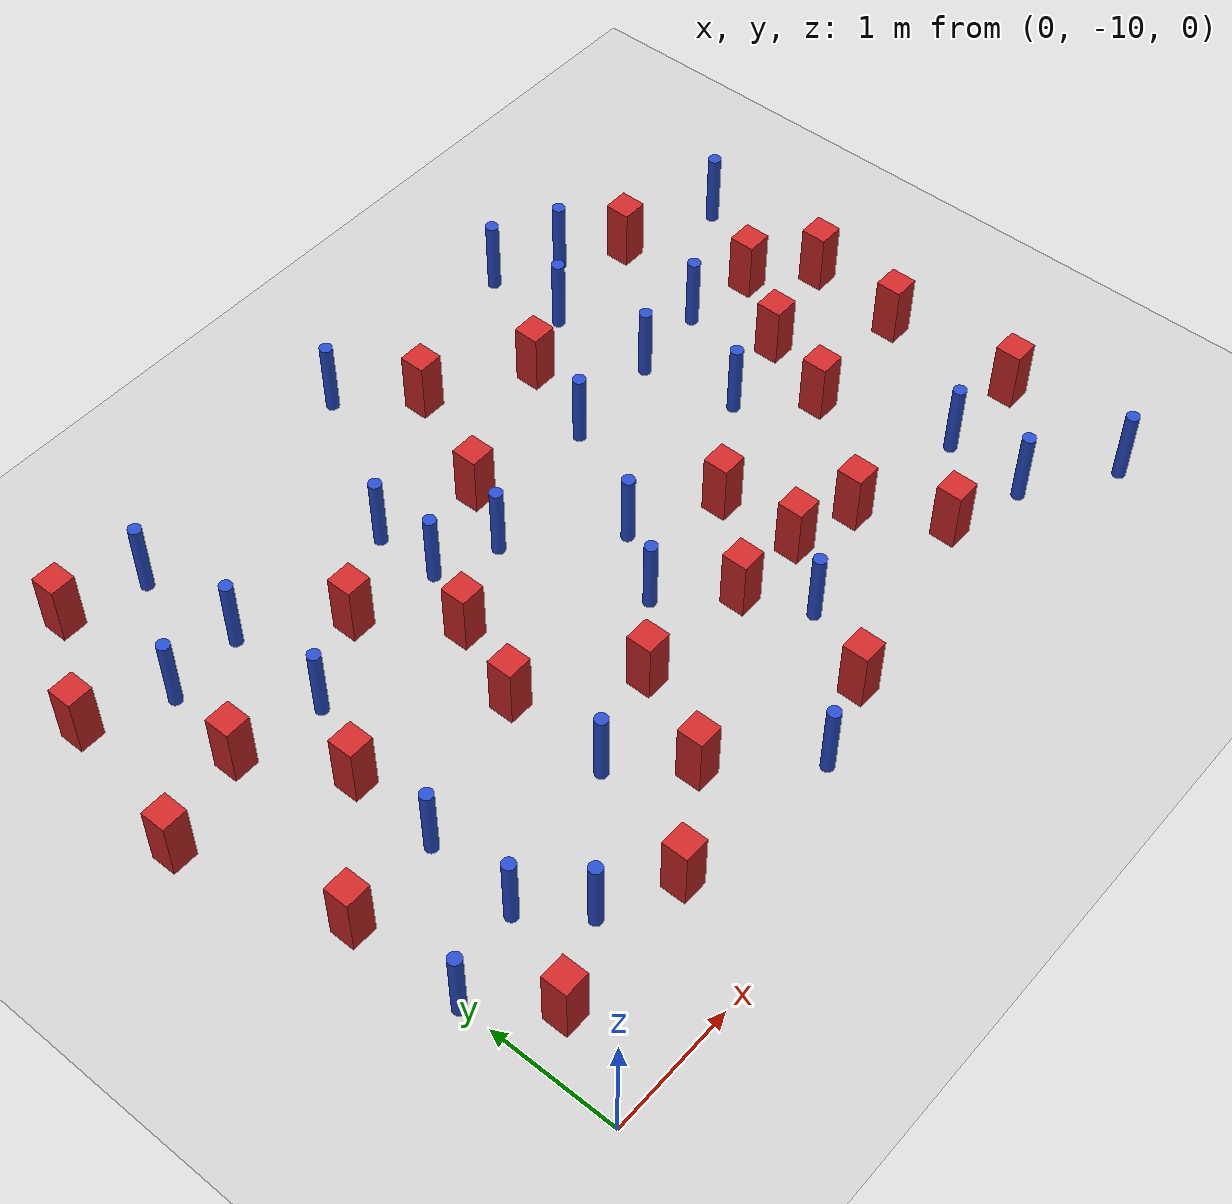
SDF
<sdf version="1.6">
 <world name="default">
  <model name="ground_plane">
   <static>1</static>
   <link name="link">
    <collision name="collision">
     <geometry><plane><normal>0 0 1</normal><size>100 100</size></plane></geometry>
     <surface><friction><ode><mu>100</mu><mu2>50</mu2></ode></friction></surface>
    </collision>
    <visual name="visual">
     <cast_shadows>0</cast_shadows>
     <geometry><plane><normal>0 0 1</normal><size>100 100</size></plane></geometry>
     <material>
      <ambient>1.0 1.0 1.0 1.0</ambient>
      <diffuse>0.8 0.8 0.8 1.0</diffuse>
      <specular>0.01 0.01 0.01 1.000000</specular>
     </material>
    </visual>
   </link>
  </model>
  <model name="square_post_obstacle1">
   <static>true</static>
   <pose>4.98512163311 -8.85030999336 8.22691968438e-08 7.22125133819e-06 -7.54495500217e-07 2.29674213826e-05</pose>
   <link name="link">
    <pose>0 0 0.25 0 -0 0</pose>
    <inertial>
     <mass>100</mass>
     <inertia>
      <ixx>0.166667</ixx>
      <ixy>0</ixy>
      <ixz>0</ixz>
      <iyy>0.166667</iyy>
      <iyz>0</iyz>
      <izz>0.166667</izz>
     </inertia>
    </inertial>
    <collision name="collision"><geometry><box><size>.2 .2 .5</size></box></geometry></collision>
    <visual name="visual">
     <geometry><box><size>.2 .2 .5</size></box></geometry>
     <material>
      <script><name>Gazebo/Red</name><uri>file://media/materials/scripts/gazebo.material</uri></script>
     </material>
    </visual>
   </link>
  </model>
  <model name="square_post_obstacle2">
   <static>true</static>
   <pose>0.356496123219 -9.28904037353 8.22691968438e-08 7.2212513382e-06 -7.54495500217e-07 2.29674213826e-05</pose>
   <link name="link">
    <pose>0 0 0.25 0 -0 0</pose>
    <inertial>
     <mass>100</mass>
     <inertia>
      <ixx>0.166667</ixx>
      <ixy>0</ixy>
      <ixz>0</ixz>
      <iyy>0.166667</iyy>
      <iyz>0</iyz>
      <izz>0.166667</izz>
     </inertia>
    </inertial>
    <collision name="collision"><geometry><box><size>.2 .2 .5</size></box></geometry></collision>
    <visual name="visual">
     <geometry><box><size>.2 .2 .5</size></box></geometry>
     <material>
      <script><name>Gazebo/Red</name><uri>file://media/materials/scripts/gazebo.material</uri></script>
     </material>
    </visual>
   </link>
  </model>
  <model name="square_post_obstacle4">
   <static>true</static>
   <pose>3.07197832872 -6.08663907217 8.22691968438e-08 7.2212513382e-06 -7.54495500217e-07 2.29674213826e-05</pose>
   <link name="link">
    <pose>0 0 0.25 0 -0 0</pose>
    <inertial>
     <mass>100</mass>
     <inertia>
      <ixx>0.166667</ixx>
      <ixy>0</ixy>
      <ixz>0</ixz>
      <iyy>0.166667</iyy>
      <iyz>0</iyz>
      <izz>0.166667</izz>
     </inertia>
    </inertial>
    <collision name="collision"><geometry><box><size>.2 .2 .5</size></box></geometry></collision>
    <visual name="visual">
     <geometry><box><size>.2 .2 .5</size></box></geometry>
     <material>
      <script><name>Gazebo/Red</name><uri>file://media/materials/scripts/gazebo.material</uri></script>
     </material>
    </visual>
   </link>
  </model>
  <model name="square_post_obstacle8">
   <static>true</static>
   <pose>1.67702876717 -6.24048371614 8.22691968438e-08 7.2212513382e-06 -7.54495500217e-07 2.29674213826e-05</pose>
   <link name="link">
    <pose>0 0 0.25 0 -0 0</pose>
    <inertial>
     <mass>100</mass>
     <inertia>
      <ixx>0.166667</ixx>
      <ixy>0</ixy>
      <ixz>0</ixz>
      <iyy>0.166667</iyy>
      <iyz>0</iyz>
      <izz>0.166667</izz>
     </inertia>
    </inertial>
    <collision name="collision"><geometry><box><size>.2 .2 .5</size></box></geometry></collision>
    <visual name="visual">
     <geometry><box><size>.2 .2 .5</size></box></geometry>
     <material>
      <script><name>Gazebo/Red</name><uri>file://media/materials/scripts/gazebo.material</uri></script>
     </material>
    </visual>
   </link>
  </model>
  <model name="pole_obstacle8">
   <static>true</static>
   <pose>2.81739710096 -6.5374119747 2.88873142074e-08 -9.90536689859e-09 4.60219948989e-07 -1.20965994961e-07</pose>
   <link name="link">
    <pose>0 0 0.3 0 -0 0</pose>
    <inertial>
     <mass>1</mass>
     <inertia><ixx>0.145833</ixx><ixy>0</ixy><ixz>0</ixz><iyy>0.145833</iyy><iyz>0</iyz><izz>0.125</izz></inertia>
    </inertial>
    <collision name="collision">
     <geometry><cylinder><radius>0.05</radius><length>.6</length></cylinder></geometry>
    </collision>
    <visual name="visual">
     <geometry><cylinder><radius>0.05</radius><length>.6</length></cylinder></geometry>
     <material>
      <script><name>Gazebo/Blue</name><uri>file://media/materials/scripts/gazebo.material</uri></script>
     </material>
    </visual>
   </link>
  </model>
  <model name="pole_obstacle13">
   <static>true</static>
   <pose>0.713639975602 -7.86014418358 2.88873142074e-08 -9.90536689661e-09 4.60219948993e-07 -1.20965994957e-07</pose>
   <link name="link">
    <pose>0 0 0.3 0 -0 0</pose>
    <inertial>
     <mass>1</mass>
     <inertia><ixx>0.145833</ixx><ixy>0</ixy><ixz>0</ixz><iyy>0.145833</iyy><iyz>0</iyz><izz>0.125</izz></inertia>
    </inertial>
    <collision name="collision">
     <geometry><cylinder><radius>0.05</radius><length>.6</length></cylinder></geometry>
    </collision>
    <visual name="visual">
     <geometry><cylinder><radius>0.05</radius><length>.6</length></cylinder></geometry>
     <material>
      <script><name>Gazebo/Blue</name><uri>file://media/materials/scripts/gazebo.material</uri></script>
     </material>
    </visual>
   </link>
  </model>
  <model name="square_post_obstacle30">
   <static>true</static>
   <pose>5.36841673009 -7.40535791833 8.22691968438e-08 7.2212513382e-06 -7.54495500217e-07 2.29674213826e-05</pose>
   <link name="link">
    <pose>0 0 0.25 0 -0 0</pose>
    <inertial>
     <mass>100</mass>
     <inertia>
      <ixx>0.166667</ixx>
      <ixy>0</ixy>
      <ixz>0</ixz>
      <iyy>0.166667</iyy>
      <iyz>0</iyz>
      <izz>0.166667</izz>
     </inertia>
    </inertial>
    <collision name="collision"><geometry><box><size>.2 .2 .5</size></box></geometry></collision>
    <visual name="visual">
     <geometry><box><size>.2 .2 .5</size></box></geometry>
     <material>
      <script><name>Gazebo/Red</name><uri>file://media/materials/scripts/gazebo.material</uri></script>
     </material>
    </visual>
   </link>
  </model>
  <model name="pole_obstacle22">
   <static>true</static>
   <pose>1.02918778833 -6.57409113815 2.88873142074e-08 -9.90536689905e-09 4.60219948988e-07 -1.20965994961e-07</pose>
   <link name="link">
    <pose>0 0 0.3 0 -0 0</pose>
    <inertial>
     <mass>1</mass>
     <inertia><ixx>0.145833</ixx><ixy>0</ixy><ixz>0</ixz><iyy>0.145833</iyy><iyz>0</iyz><izz>0.125</izz></inertia>
    </inertial>
    <collision name="collision">
     <geometry><cylinder><radius>0.05</radius><length>.6</length></cylinder></geometry>
    </collision>
    <visual name="visual">
     <geometry><cylinder><radius>0.05</radius><length>.6</length></cylinder></geometry>
     <material>
      <script><name>Gazebo/Blue</name><uri>file://media/materials/scripts/gazebo.material</uri></script>
     </material>
    </visual>
   </link>
  </model>
  <model name="pole_obstacle29">
   <static>true</static>
   <pose>0.982726285975 -8.99360834334 2.88873142074e-08 -9.9053669105e-09 4.6021994896e-07 -1.20965994979e-07</pose>
   <link name="link">
    <pose>0 0 0.3 0 -0 0</pose>
    <inertial>
     <mass>1</mass>
     <inertia><ixx>0.145833</ixx><ixy>0</ixy><ixz>0</ixz><iyy>0.145833</iyy><iyz>0</iyz><izz>0.125</izz></inertia>
    </inertial>
    <collision name="collision">
     <geometry><cylinder><radius>0.05</radius><length>.6</length></cylinder></geometry>
    </collision>
    <visual name="visual">
     <geometry><cylinder><radius>0.05</radius><length>.6</length></cylinder></geometry>
     <material>
      <script><name>Gazebo/Blue</name><uri>file://media/materials/scripts/gazebo.material</uri></script>
     </material>
    </visual>
   </link>
  </model>
  <model name="pole_obstacle34">
   <static>true</static>
   <pose>3.776180721 -8.57237869199 2.88873142074e-08 -9.90536692318e-09 4.6021994893e-07 -1.20965994988e-07</pose>
   <link name="link">
    <pose>0 0 0.3 0 -0 0</pose>
    <inertial>
     <mass>1</mass>
     <inertia><ixx>0.145833</ixx><ixy>0</ixy><ixz>0</ixz><iyy>0.145833</iyy><iyz>0</iyz><izz>0.125</izz></inertia>
    </inertial>
    <collision name="collision">
     <geometry><cylinder><radius>0.05</radius><length>.6</length></cylinder></geometry>
    </collision>
    <visual name="visual">
     <geometry><cylinder><radius>0.05</radius><length>.6</length></cylinder></geometry>
     <material>
      <script><name>Gazebo/Blue</name><uri>file://media/materials/scripts/gazebo.material</uri></script>
     </material>
    </visual>
   </link>
  </model>
  <model name="square_post_obstacle38">
   <static>true</static>
   <pose>4.1421093715 -7.47324730544 8.22691968438e-08 7.22125133819e-06 -7.54495500217e-07 2.29674213826e-05</pose>
   <link name="link">
    <pose>0 0 0.25 0 -0 0</pose>
    <inertial>
     <mass>100</mass>
     <inertia>
      <ixx>0.166667</ixx>
      <ixy>0</ixy>
      <ixz>0</ixz>
      <iyy>0.166667</iyy>
      <iyz>0</iyz>
      <izz>0.166667</izz>
     </inertia>
    </inertial>
    <collision name="collision"><geometry><box><size>.2 .2 .5</size></box></geometry></collision>
    <visual name="visual">
     <geometry><box><size>.2 .2 .5</size></box></geometry>
     <material>
      <script><name>Gazebo/Red</name><uri>file://media/materials/scripts/gazebo.material</uri></script>
     </material>
    </visual>
   </link>
  </model>
  <model name="pole_obstacle39">
   <static>true</static>
   <pose>3.05622703414 -4.67441624264 2.88873142074e-08 -9.90536689859e-09 4.60219948989e-07 -1.20965994961e-07</pose>
   <link name="link">
    <pose>0 0 0.3 0 -0 0</pose>
    <inertial>
     <mass>1</mass>
     <inertia><ixx>0.145833</ixx><ixy>0</ixy><ixz>0</ixz><iyy>0.145833</iyy><iyz>0</iyz><izz>0.125</izz></inertia>
    </inertial>
    <collision name="collision">
     <geometry><cylinder><radius>0.05</radius><length>.6</length></cylinder></geometry>
    </collision>
    <visual name="visual">
     <geometry><cylinder><radius>0.05</radius><length>.6</length></cylinder></geometry>
     <material>
      <script><name>Gazebo/Blue</name><uri>file://media/materials/scripts/gazebo.material</uri></script>
     </material>
    </visual>
   </link>
  </model>
  <model name="square_post_obstacle43">
   <static>true</static>
   <pose>3.54974140808 -8.10706687578 8.22691968438e-08 7.22125133819e-06 -7.54495500217e-07 2.29674213826e-05</pose>
   <link name="link">
    <pose>0 0 0.25 0 -0 0</pose>
    <inertial>
     <mass>100</mass>
     <inertia>
      <ixx>0.166667</ixx>
      <ixy>0</ixy>
      <ixz>0</ixz>
      <iyy>0.166667</iyy>
      <iyz>0</iyz>
      <izz>0.166667</izz>
     </inertia>
    </inertial>
    <collision name="collision"><geometry><box><size>.2 .2 .5</size></box></geometry></collision>
    <visual name="visual">
     <geometry><box><size>.2 .2 .5</size></box></geometry>
     <material>
      <script><name>Gazebo/Red</name><uri>file://media/materials/scripts/gazebo.material</uri></script>
     </material>
    </visual>
   </link>
  </model>
  <model name="square_post_obstacle48">
   <static>true</static>
   <pose>4.2496971158 -5.6195925228 8.22691968438e-08 7.2212513382e-06 -7.54495500217e-07 2.29674213826e-05</pose>
   <link name="link">
    <pose>0 0 0.25 0 -0 0</pose>
    <inertial>
     <mass>100</mass>
     <inertia>
      <ixx>0.166667</ixx>
      <ixy>0</ixy>
      <ixz>0</ixz>
      <iyy>0.166667</iyy>
      <iyz>0</iyz>
      <izz>0.166667</izz>
     </inertia>
    </inertial>
    <collision name="collision"><geometry><box><size>.2 .2 .5</size></box></geometry></collision>
    <visual name="visual">
     <geometry><box><size>.2 .2 .5</size></box></geometry>
     <material>
      <script><name>Gazebo/Red</name><uri>file://media/materials/scripts/gazebo.material</uri></script>
     </material>
    </visual>
   </link>
  </model>
  <model name="square_post_obstacle49">
   <static>true</static>
   <pose>5.61511567562 -6.80044956761 8.22691968438e-08 7.2212513382e-06 -7.54495500217e-07 2.29674213826e-05</pose>
   <link name="link">
    <pose>0 0 0.25 0 -0 0</pose>
    <inertial>
     <mass>100</mass>
     <inertia>
      <ixx>0.166667</ixx>
      <ixy>0</ixy>
      <ixz>0</ixz>
      <iyy>0.166667</iyy>
      <iyz>0</iyz>
      <izz>0.166667</izz>
     </inertia>
    </inertial>
    <collision name="collision"><geometry><box><size>.2 .2 .5</size></box></geometry></collision>
    <visual name="visual">
     <geometry><box><size>.2 .2 .5</size></box></geometry>
     <material>
      <script><name>Gazebo/Red</name><uri>file://media/materials/scripts/gazebo.material</uri></script>
     </material>
    </visual>
   </link>
  </model>
  <model name="square_post_obstacle54">
   <static>true</static>
   <pose>3.49885614447 -5.1874615845 8.22691968438e-08 7.2212513382e-06 -7.54495500217e-07 2.29674213826e-05</pose>
   <link name="link">
    <pose>0 0 0.25 0 -0 0</pose>
    <inertial>
     <mass>100</mass>
     <inertia>
      <ixx>0.166667</ixx>
      <ixy>0</ixy>
      <ixz>0</ixz>
      <iyy>0.166667</iyy>
      <iyz>0</iyz>
      <izz>0.166667</izz>
     </inertia>
    </inertial>
    <collision name="collision"><geometry><box><size>.2 .2 .5</size></box></geometry></collision>
    <visual name="visual">
     <geometry><box><size>.2 .2 .5</size></box></geometry>
     <material>
      <script><name>Gazebo/Red</name><uri>file://media/materials/scripts/gazebo.material</uri></script>
     </material>
    </visual>
   </link>
  </model>
  <model name="square_post_obstacle56">
   <static>true</static>
   <pose>-0.379557443874 -6.67123432718 8.22691968438e-08 7.22125133819e-06 -7.54495500217e-07 2.29674213826e-05</pose>
   <link name="link">
    <pose>0 0 0.25 0 -0 0</pose>
    <inertial>
     <mass>100</mass>
     <inertia>
      <ixx>0.166667</ixx>
      <ixy>0</ixy>
      <ixz>0</ixz>
      <iyy>0.166667</iyy>
      <iyz>0</iyz>
      <izz>0.166667</izz>
     </inertia>
    </inertial>
    <collision name="collision"><geometry><box><size>.2 .2 .5</size></box></geometry></collision>
    <visual name="visual">
     <geometry><box><size>.2 .2 .5</size></box></geometry>
     <material>
      <script><name>Gazebo/Red</name><uri>file://media/materials/scripts/gazebo.material</uri></script>
     </material>
    </visual>
   </link>
  </model>
  <model name="square_post_obstacle61">
   <static>true</static>
   <pose>4.66519820238 -8.23943527017 8.22691968438e-08 7.22125133819e-06 -7.54495500217e-07 2.29674213826e-05</pose>
   <link name="link">
    <pose>0 0 0.25 0 -0 0</pose>
    <inertial>
     <mass>100</mass>
     <inertia>
      <ixx>0.166667</ixx>
      <ixy>0</ixy>
      <ixz>0</ixz>
      <iyy>0.166667</iyy>
      <iyz>0</iyz>
      <izz>0.166667</izz>
     </inertia>
    </inertial>
    <collision name="collision"><geometry><box><size>.2 .2 .5</size></box></geometry></collision>
    <visual name="visual">
     <geometry><box><size>.2 .2 .5</size></box></geometry>
     <material>
      <script><name>Gazebo/Red</name><uri>file://media/materials/scripts/gazebo.material</uri></script>
     </material>
    </visual>
   </link>
  </model>
  <model name="square_post_obstacle67">
   <static>true</static>
   <pose>0.750453599424 -7.1626523866 8.22691968438e-08 7.22125133819e-06 -7.54495500217e-07 2.29674213826e-05</pose>
   <link name="link">
    <pose>0 0 0.25 0 -0 0</pose>
    <inertial>
     <mass>100</mass>
     <inertia>
      <ixx>0.166667</ixx>
      <ixy>0</ixy>
      <ixz>0</ixz>
      <iyy>0.166667</iyy>
      <iyz>0</iyz>
      <izz>0.166667</izz>
     </inertia>
    </inertial>
    <collision name="collision"><geometry><box><size>.2 .2 .5</size></box></geometry></collision>
    <visual name="visual">
     <geometry><box><size>.2 .2 .5</size></box></geometry>
     <material>
      <script><name>Gazebo/Red</name><uri>file://media/materials/scripts/gazebo.material</uri></script>
     </material>
    </visual>
   </link>
  </model>
  <model name="pole_obstacle67">
   <static>true</static>
   <pose>0.458232614662 -5.77760965465 2.88873142074e-08 -9.90536689616e-09 4.60219948994e-07 -1.20965994955e-07</pose>
   <link name="link">
    <pose>0 0 0.3 0 -0 0</pose>
    <inertial>
     <mass>1</mass>
     <inertia><ixx>0.145833</ixx><ixy>0</ixy><ixz>0</ixz><iyy>0.145833</iyy><iyz>0</iyz><izz>0.125</izz></inertia>
    </inertial>
    <collision name="collision">
     <geometry><cylinder><radius>0.05</radius><length>.6</length></cylinder></geometry>
    </collision>
    <visual name="visual">
     <geometry><cylinder><radius>0.05</radius><length>.6</length></cylinder></geometry>
     <material>
      <script><name>Gazebo/Blue</name><uri>file://media/materials/scripts/gazebo.material</uri></script>
     </material>
    </visual>
   </link>
  </model>
  <model name="pole_obstacle68">
   <static>true</static>
   <pose>5.66229097962 -8.38997382632 2.88873142074e-08 -9.9053668967e-09 4.60219948993e-07 -1.20965994957e-07</pose>
   <link name="link">
    <pose>0 0 0.3 0 -0 0</pose>
    <inertial>
     <mass>1</mass>
     <inertia><ixx>0.145833</ixx><ixy>0</ixy><ixz>0</ixz><iyy>0.145833</iyy><iyz>0</iyz><izz>0.125</izz></inertia>
    </inertial>
    <collision name="collision">
     <geometry><cylinder><radius>0.05</radius><length>.6</length></cylinder></geometry>
    </collision>
    <visual name="visual">
     <geometry><cylinder><radius>0.05</radius><length>.6</length></cylinder></geometry>
     <material>
      <script><name>Gazebo/Blue</name><uri>file://media/materials/scripts/gazebo.material</uri></script>
     </material>
    </visual>
   </link>
  </model>
  <model name="square_post_obstacle76">
   <static>true</static>
   <pose>6.36379807594 -7.3450303224 8.22691968438e-08 7.2212513382e-06 -7.54495500217e-07 2.29674213826e-05</pose>
   <link name="link">
    <pose>0 0 0.25 0 -0 0</pose>
    <inertial>
     <mass>100</mass>
     <inertia>
      <ixx>0.166667</ixx>
      <ixy>0</ixy>
      <ixz>0</ixz>
      <iyy>0.166667</iyy>
      <iyz>0</iyz>
      <izz>0.166667</izz>
     </inertia>
    </inertial>
    <collision name="collision"><geometry><box><size>.2 .2 .5</size></box></geometry></collision>
    <visual name="visual">
     <geometry><box><size>.2 .2 .5</size></box></geometry>
     <material>
      <script><name>Gazebo/Red</name><uri>file://media/materials/scripts/gazebo.material</uri></script>
     </material>
    </visual>
   </link>
  </model>
  <model name="pole_obstacle75">
   <static>true</static>
   <pose>4.79500722997 -5.3747782037 2.88873142074e-08 -9.90536690842e-09 4.60219948965e-07 -1.20965994976e-07</pose>
   <link name="link">
    <pose>0 0 0.3 0 -0 0</pose>
    <inertial>
     <mass>1</mass>
     <inertia><ixx>0.145833</ixx><ixy>0</ixy><ixz>0</ixz><iyy>0.145833</iyy><iyz>0</iyz><izz>0.125</izz></inertia>
    </inertial>
    <collision name="collision">
     <geometry><cylinder><radius>0.05</radius><length>.6</length></cylinder></geometry>
    </collision>
    <visual name="visual">
     <geometry><cylinder><radius>0.05</radius><length>.6</length></cylinder></geometry>
     <material>
      <script><name>Gazebo/Blue</name><uri>file://media/materials/scripts/gazebo.material</uri></script>
     </material>
    </visual>
   </link>
  </model>
  <model name="pole_obstacle106">
   <static>true</static>
   <pose>0.666298882794 -8.57895916905 2.88873142074e-08 -9.90536690779e-09 4.60219948967e-07 -1.20965994975e-07</pose>
   <link name="link">
    <pose>0 0 0.3 0 -0 0</pose>
    <inertial>
     <mass>1</mass>
     <inertia><ixx>0.145833</ixx><ixy>0</ixy><ixz>0</ixz><iyy>0.145833</iyy><iyz>0</iyz><izz>0.125</izz></inertia>
    </inertial>
    <collision name="collision">
     <geometry><cylinder><radius>0.05</radius><length>.6</length></cylinder></geometry>
    </collision>
    <visual name="visual">
     <geometry><cylinder><radius>0.05</radius><length>.6</length></cylinder></geometry>
     <material>
      <script><name>Gazebo/Blue</name><uri>file://media/materials/scripts/gazebo.material</uri></script>
     </material>
    </visual>
   </link>
  </model>
  <model name="pole_obstacle107">
   <static>true</static>
   <pose>-0.0168736808405 -8.7699348839 2.88873142074e-08 -9.90536690815e-09 4.60219948966e-07 -1.20965994976e-07</pose>
   <link name="link">
    <pose>0 0 0.3 0 -0 0</pose>
    <inertial>
     <mass>1</mass>
     <inertia><ixx>0.145833</ixx><ixy>0</ixy><ixz>0</ixz><iyy>0.145833</iyy><iyz>0</iyz><izz>0.125</izz></inertia>
    </inertial>
    <collision name="collision">
     <geometry><cylinder><radius>0.05</radius><length>.6</length></cylinder></geometry>
    </collision>
    <visual name="visual">
     <geometry><cylinder><radius>0.05</radius><length>.6</length></cylinder></geometry>
     <material>
      <script><name>Gazebo/Blue</name><uri>file://media/materials/scripts/gazebo.material</uri></script>
     </material>
    </visual>
   </link>
  </model>
  <model name="square_post_obstacle98">
   <static>true</static>
   <pose>2.60036764104 -8.06396566892 8.22691968438e-08 7.2212513382e-06 -7.54495500217e-07 2.29674213826e-05</pose>
   <link name="link">
    <pose>0 0 0.25 0 -0 0</pose>
    <inertial>
     <mass>100</mass>
     <inertia>
      <ixx>0.166667</ixx>
      <ixy>0</ixy>
      <ixz>0</ixz>
      <iyy>0.166667</iyy>
      <iyz>0</iyz>
      <izz>0.166667</izz>
     </inertia>
    </inertial>
    <collision name="collision"><geometry><box><size>.2 .2 .5</size></box></geometry></collision>
    <visual name="visual">
     <geometry><box><size>.2 .2 .5</size></box></geometry>
     <material>
      <script><name>Gazebo/Red</name><uri>file://media/materials/scripts/gazebo.material</uri></script>
     </material>
    </visual>
   </link>
  </model>
  <model name="square_post_obstacle100">
   <static>true</static>
   <pose>6.46310514946 -6.5741552067 8.22691968438e-08 7.2212513382e-06 -7.54495500217e-07 2.29674213826e-05</pose>
   <link name="link">
    <pose>0 0 0.25 0 -0 0</pose>
    <inertial>
     <mass>100</mass>
     <inertia>
      <ixx>0.166667</ixx>
      <ixy>0</ixy>
      <ixz>0</ixz>
      <iyy>0.166667</iyy>
      <iyz>0</iyz>
      <izz>0.166667</izz>
     </inertia>
    </inertial>
    <collision name="collision"><geometry><box><size>.2 .2 .5</size></box></geometry></collision>
    <visual name="visual">
     <geometry><box><size>.2 .2 .5</size></box></geometry>
     <material>
      <script><name>Gazebo/Red</name><uri>file://media/materials/scripts/gazebo.material</uri></script>
     </material>
    </visual>
   </link>
  </model>
  <model name="square_post_obstacle101">
   <static>true</static>
   <pose>0.408930154003 -4.73893074047 8.22691968438e-08 7.2212513382e-06 -7.54495500217e-07 2.29674213826e-05</pose>
   <link name="link">
    <pose>0 0 0.25 0 -0 0</pose>
    <inertial>
     <mass>100</mass>
     <inertia>
      <ixx>0.166667</ixx>
      <ixy>0</ixy>
      <ixz>0</ixz>
      <iyy>0.166667</iyy>
      <iyz>0</iyz>
      <izz>0.166667</izz>
     </inertia>
    </inertial>
    <collision name="collision"><geometry><box><size>.2 .2 .5</size></box></geometry></collision>
    <visual name="visual">
     <geometry><box><size>.2 .2 .5</size></box></geometry>
     <material>
      <script><name>Gazebo/Red</name><uri>file://media/materials/scripts/gazebo.material</uri></script>
     </material>
    </visual>
   </link>
  </model>
  <model name="pole_obstacle117">
   <static>true</static>
   <pose>4.95310837414 -6.9424619774 2.88873142074e-08 -9.90536690842e-09 4.60219948965e-07 -1.20965994976e-07</pose>
   <link name="link">
    <pose>0 0 0.3 0 -0 0</pose>
    <inertial>
     <mass>1</mass>
     <inertia><ixx>0.145833</ixx><ixy>0</ixy><ixz>0</ixz><iyy>0.145833</iyy><iyz>0</iyz><izz>0.125</izz></inertia>
    </inertial>
    <collision name="collision">
     <geometry><cylinder><radius>0.05</radius><length>.6</length></cylinder></geometry>
    </collision>
    <visual name="visual">
     <geometry><cylinder><radius>0.05</radius><length>.6</length></cylinder></geometry>
     <material>
      <script><name>Gazebo/Blue</name><uri>file://media/materials/scripts/gazebo.material</uri></script>
     </material>
    </visual>
   </link>
  </model>
  <model name="square_post_obstacle107">
   <static>true</static>
   <pose>3.45377669791 -9.18041229384 8.22691968438e-08 7.22125133819e-06 -7.54495500217e-07 2.29674213826e-05</pose>
   <link name="link">
    <pose>0 0 0.25 0 -0 0</pose>
    <inertial>
     <mass>100</mass>
     <inertia>
      <ixx>0.166667</ixx>
      <ixy>0</ixy>
      <ixz>0</ixz>
      <iyy>0.166667</iyy>
      <iyz>0</iyz>
      <izz>0.166667</izz>
     </inertia>
    </inertial>
    <collision name="collision"><geometry><box><size>.2 .2 .5</size></box></geometry></collision>
    <visual name="visual">
     <geometry><box><size>.2 .2 .5</size></box></geometry>
     <material>
      <script><name>Gazebo/Red</name><uri>file://media/materials/scripts/gazebo.material</uri></script>
     </material>
    </visual>
   </link>
  </model>
  <model name="pole_obstacle120">
   <static>true</static>
   <pose>1.83852917064 -8.31142802645 2.88873142074e-08 -9.90536690474e-09 4.60219948974e-07 -1.2096599497e-07</pose>
   <link name="link">
    <pose>0 0 0.3 0 -0 0</pose>
    <inertial>
     <mass>1</mass>
     <inertia><ixx>0.145833</ixx><ixy>0</ixy><ixz>0</ixz><iyy>0.145833</iyy><iyz>0</iyz><izz>0.125</izz></inertia>
    </inertial>
    <collision name="collision">
     <geometry><cylinder><radius>0.05</radius><length>.6</length></cylinder></geometry>
    </collision>
    <visual name="visual">
     <geometry><cylinder><radius>0.05</radius><length>.6</length></cylinder></geometry>
     <material>
      <script><name>Gazebo/Blue</name><uri>file://media/materials/scripts/gazebo.material</uri></script>
     </material>
    </visual>
   </link>
  </model>
  <model name="pole_obstacle125">
   <static>true</static>
   <pose>5.46809388481 -6.13240386834 2.88873142074e-08 -9.90536690842e-09 4.60219948965e-07 -1.20965994976e-07</pose>
   <link name="link">
    <pose>0 0 0.3 0 -0 0</pose>
    <inertial>
     <mass>1</mass>
     <inertia><ixx>0.145833</ixx><ixy>0</ixy><ixz>0</ixz><iyy>0.145833</iyy><iyz>0</iyz><izz>0.125</izz></inertia>
    </inertial>
    <collision name="collision">
     <geometry><cylinder><radius>0.05</radius><length>.6</length></cylinder></geometry>
    </collision>
    <visual name="visual">
     <geometry><cylinder><radius>0.05</radius><length>.6</length></cylinder></geometry>
     <material>
      <script><name>Gazebo/Blue</name><uri>file://media/materials/scripts/gazebo.material</uri></script>
     </material>
    </visual>
   </link>
  </model>
  <model name="pole_obstacle129">
   <static>true</static>
   <pose>2.34291669255 -5.85115899623 2.88873142074e-08 -9.90536689859e-09 4.60219948989e-07 -1.20965994961e-07</pose>
   <link name="link">
    <pose>0 0 0.3 0 -0 0</pose>
    <inertial>
     <mass>1</mass>
     <inertia><ixx>0.145833</ixx><ixy>0</ixy><ixz>0</ixz><iyy>0.145833</iyy><iyz>0</iyz><izz>0.125</izz></inertia>
    </inertial>
    <collision name="collision">
     <geometry><cylinder><radius>0.05</radius><length>.6</length></cylinder></geometry>
    </collision>
    <visual name="visual">
     <geometry><cylinder><radius>0.05</radius><length>.6</length></cylinder></geometry>
     <material>
      <script><name>Gazebo/Blue</name><uri>file://media/materials/scripts/gazebo.material</uri></script>
     </material>
    </visual>
   </link>
  </model>
  <model name="pole_obstacle135">
   <static>true</static>
   <pose>6.2354760911 -9.46102563335 2.88873142074e-08 -9.9053668967e-09 4.60219948993e-07 -1.20965994957e-07</pose>
   <link name="link">
    <pose>0 0 0.3 0 -0 0</pose>
    <inertial>
     <mass>1</mass>
     <inertia><ixx>0.145833</ixx><ixy>0</ixy><ixz>0</ixz><iyy>0.145833</iyy><iyz>0</iyz><izz>0.125</izz></inertia>
    </inertial>
    <collision name="collision">
     <geometry><cylinder><radius>0.05</radius><length>.6</length></cylinder></geometry>
    </collision>
    <visual name="visual">
     <geometry><cylinder><radius>0.05</radius><length>.6</length></cylinder></geometry>
     <material>
      <script><name>Gazebo/Blue</name><uri>file://media/materials/scripts/gazebo.material</uri></script>
     </material>
    </visual>
   </link>
  </model>
  <model name="pole_obstacle136">
   <static>true</static>
   <pose>6.48574562567 -5.51801350906 2.88873142074e-08 -9.90536690842e-09 4.60219948965e-07 -1.20965994976e-07</pose>
   <link name="link">
    <pose>0 0 0.3 0 -0 0</pose>
    <inertial>
     <mass>1</mass>
     <inertia><ixx>0.145833</ixx><ixy>0</ixy><ixz>0</ixz><iyy>0.145833</iyy><iyz>0</iyz><izz>0.125</izz></inertia>
    </inertial>
    <collision name="collision">
     <geometry><cylinder><radius>0.05</radius><length>.6</length></cylinder></geometry>
    </collision>
    <visual name="visual">
     <geometry><cylinder><radius>0.05</radius><length>.6</length></cylinder></geometry>
     <material>
      <script><name>Gazebo/Blue</name><uri>file://media/materials/scripts/gazebo.material</uri></script>
     </material>
    </visual>
   </link>
  </model>
  <model name="square_post_obstacle127">
   <static>true</static>
   <pose>-0.129539844216 -5.52278591933 8.22691968438e-08 7.2212513382e-06 -7.54495500217e-07 2.29674213826e-05</pose>
   <link name="link">
    <pose>0 0 0.25 0 -0 0</pose>
    <inertial>
     <mass>100</mass>
     <inertia>
      <ixx>0.166667</ixx>
      <ixy>0</ixy>
      <ixz>0</ixz>
      <iyy>0.166667</iyy>
      <iyz>0</iyz>
      <izz>0.166667</izz>
     </inertia>
    </inertial>
    <collision name="collision"><geometry><box><size>.2 .2 .5</size></box></geometry></collision>
    <visual name="visual">
     <geometry><box><size>.2 .2 .5</size></box></geometry>
     <material>
      <script><name>Gazebo/Red</name><uri>file://media/materials/scripts/gazebo.material</uri></script>
     </material>
    </visual>
   </link>
  </model>
  <model name="pole_obstacle144">
   <static>true</static>
   <pose>3.13589845988 -7.64507083373 2.88873142074e-08 -9.90536689859e-09 4.60219948989e-07 -1.20965994961e-07</pose>
   <link name="link">
    <pose>0 0 0.3 0 -0 0</pose>
    <inertial>
     <mass>1</mass>
     <inertia><ixx>0.145833</ixx><ixy>0</ixy><ixz>0</ixz><iyy>0.145833</iyy><iyz>0</iyz><izz>0.125</izz></inertia>
    </inertial>
    <collision name="collision">
     <geometry><cylinder><radius>0.05</radius><length>.6</length></cylinder></geometry>
    </collision>
    <visual name="visual">
     <geometry><cylinder><radius>0.05</radius><length>.6</length></cylinder></geometry>
     <material>
      <script><name>Gazebo/Blue</name><uri>file://media/materials/scripts/gazebo.material</uri></script>
     </material>
    </visual>
   </link>
  </model>
  <model name="pole_obstacle155">
   <static>true</static>
   <pose>2.34493758149 -6.36041856605 2.88873142074e-08 -9.90536689859e-09 4.60219948989e-07 -1.20965994961e-07</pose>
   <link name="link">
    <pose>0 0 0.3 0 -0 0</pose>
    <inertial>
     <mass>1</mass>
     <inertia><ixx>0.145833</ixx><ixy>0</ixy><ixz>0</ixz><iyy>0.145833</iyy><iyz>0</iyz><izz>0.125</izz></inertia>
    </inertial>
    <collision name="collision">
     <geometry><cylinder><radius>0.05</radius><length>.6</length></cylinder></geometry>
    </collision>
    <visual name="visual">
     <geometry><cylinder><radius>0.05</radius><length>.6</length></cylinder></geometry>
     <material>
      <script><name>Gazebo/Blue</name><uri>file://media/materials/scripts/gazebo.material</uri></script>
     </material>
    </visual>
   </link>
  </model>
  <model name="pole_obstacle160">
   <static>true</static>
   <pose>5.27392649406 -4.96462959893 2.88873142074e-08 -9.90536690842e-09 4.60219948965e-07 -1.20965994976e-07</pose>
   <link name="link">
    <pose>0 0 0.3 0 -0 0</pose>
    <inertial>
     <mass>1</mass>
     <inertia><ixx>0.145833</ixx><ixy>0</ixy><ixz>0</ixz><iyy>0.145833</iyy><iyz>0</iyz><izz>0.125</izz></inertia>
    </inertial>
    <collision name="collision">
     <geometry><cylinder><radius>0.05</radius><length>.6</length></cylinder></geometry>
    </collision>
    <visual name="visual">
     <geometry><cylinder><radius>0.05</radius><length>.6</length></cylinder></geometry>
     <material>
      <script><name>Gazebo/Blue</name><uri>file://media/materials/scripts/gazebo.material</uri></script>
     </material>
    </visual>
   </link>
  </model>
  <model name="square_post_obstacle155">
   <static>true</static>
   <pose>2.2365133634 -8.78409228914 8.22691968438e-08 7.22125133819e-06 -7.54495500217e-07 2.29674213826e-05</pose>
   <link name="link">
    <pose>0 0 0.25 0 -0 0</pose>
    <inertial>
     <mass>100</mass>
     <inertia>
      <ixx>0.166667</ixx>
      <ixy>0</ixy>
      <ixz>0</ixz>
      <iyy>0.166667</iyy>
      <iyz>0</iyz>
      <izz>0.166667</izz>
     </inertia>
    </inertial>
    <collision name="collision"><geometry><box><size>.2 .2 .5</size></box></geometry></collision>
    <visual name="visual">
     <geometry><box><size>.2 .2 .5</size></box></geometry>
     <material>
      <script><name>Gazebo/Red</name><uri>file://media/materials/scripts/gazebo.material</uri></script>
     </material>
    </visual>
   </link>
  </model>
  <model name="square_post_obstacle158">
   <static>true</static>
   <pose>2.11054617382 -6.86823382048 8.22691968438e-08 7.2212513382e-06 -7.54495500217e-07 2.29674213826e-05</pose>
   <link name="link">
    <pose>0 0 0.25 0 -0 0</pose>
    <inertial>
     <mass>100</mass>
     <inertia>
      <ixx>0.166667</ixx>
      <ixy>0</ixy>
      <ixz>0</ixz>
      <iyy>0.166667</iyy>
      <iyz>0</iyz>
      <izz>0.166667</izz>
     </inertia>
    </inertial>
    <collision name="collision"><geometry><box><size>.2 .2 .5</size></box></geometry></collision>
    <visual name="visual">
     <geometry><box><size>.2 .2 .5</size></box></geometry>
     <material>
      <script><name>Gazebo/Red</name><uri>file://media/materials/scripts/gazebo.material</uri></script>
     </material>
    </visual>
   </link>
  </model>
  <model name="pole_obstacle169">
   <static>true</static>
   <pose>5.59319741853 -9.02206356689 2.88873142074e-08 -9.9053668967e-09 4.60219948993e-07 -1.20965994957e-07</pose>
   <link name="link">
    <pose>0 0 0.3 0 -0 0</pose>
    <inertial>
     <mass>1</mass>
     <inertia><ixx>0.145833</ixx><ixy>0</ixy><ixz>0</ixz><iyy>0.145833</iyy><iyz>0</iyz><izz>0.125</izz></inertia>
    </inertial>
    <collision name="collision">
     <geometry><cylinder><radius>0.05</radius><length>.6</length></cylinder></geometry>
    </collision>
    <visual name="visual">
     <geometry><cylinder><radius>0.05</radius><length>.6</length></cylinder></geometry>
     <material>
      <script><name>Gazebo/Blue</name><uri>file://media/materials/scripts/gazebo.material</uri></script>
     </material>
    </visual>
   </link>
  </model>
  <model name="pole_obstacle179">
   <static>true</static>
   <pose>4.82369767956 -6.20026752182 2.88873142074e-08 -9.90536690842e-09 4.60219948965e-07 -1.20965994976e-07</pose>
   <link name="link">
    <pose>0 0 0.3 0 -0 0</pose>
    <inertial>
     <mass>1</mass>
     <inertia><ixx>0.145833</ixx><ixy>0</ixy><ixz>0</ixz><iyy>0.145833</iyy><iyz>0</iyz><izz>0.125</izz></inertia>
    </inertial>
    <collision name="collision">
     <geometry><cylinder><radius>0.05</radius><length>.6</length></cylinder></geometry>
    </collision>
    <visual name="visual">
     <geometry><cylinder><radius>0.05</radius><length>.6</length></cylinder></geometry>
     <material>
      <script><name>Gazebo/Blue</name><uri>file://media/materials/scripts/gazebo.material</uri></script>
     </material>
    </visual>
   </link>
  </model>
  <model name="pole_obstacle182">
   <static>true</static>
   <pose>3.49181533573 -7.14983257606 2.88873142074e-08 -9.90536689859e-09 4.60219948989e-07 -1.20965994961e-07</pose>
   <link name="link">
    <pose>0 0 0.3 0 -0 0</pose>
    <inertial>
     <mass>1</mass>
     <inertia><ixx>0.145833</ixx><ixy>0</ixy><ixz>0</ixz><iyy>0.145833</iyy><iyz>0</iyz><izz>0.125</izz></inertia>
    </inertial>
    <collision name="collision">
     <geometry><cylinder><radius>0.05</radius><length>.6</length></cylinder></geometry>
    </collision>
    <visual name="visual">
     <geometry><cylinder><radius>0.05</radius><length>.6</length></cylinder></geometry>
     <material>
      <script><name>Gazebo/Blue</name><uri>file://media/materials/scripts/gazebo.material</uri></script>
     </material>
    </visual>
   </link>
  </model>
  <model name="square_post_obstacle177">
   <static>true</static>
   <pose>5.71211271227 -5.25970964208 8.22691968438e-08 7.2212513382e-06 -7.54495500217e-07 2.29674213826e-05</pose>
   <link name="link">
    <pose>0 0 0.25 0 -0 0</pose>
    <inertial>
     <mass>100</mass>
     <inertia>
      <ixx>0.166667</ixx>
      <ixy>0</ixy>
      <ixz>0</ixz>
      <iyy>0.166667</iyy>
      <iyz>0</iyz>
      <izz>0.166667</izz>
     </inertia>
    </inertial>
    <collision name="collision"><geometry><box><size>.2 .2 .5</size></box></geometry></collision>
    <visual name="visual">
     <geometry><box><size>.2 .2 .5</size></box></geometry>
     <material>
      <script><name>Gazebo/Red</name><uri>file://media/materials/scripts/gazebo.material</uri></script>
     </material>
    </visual>
   </link>
  </model>
  <model name="square_post_obstacle184">
   <static>true</static>
   <pose>4.1568959736 -8.11120089938 8.22691968438e-08 7.22125133819e-06 -7.54495500217e-07 2.29674213826e-05</pose>
   <link name="link">
    <pose>0 0 0.25 0 -0 0</pose>
    <inertial>
     <mass>100</mass>
     <inertia>
      <ixx>0.166667</ixx>
      <ixy>0</ixy>
      <ixz>0</ixz>
      <iyy>0.166667</iyy>
      <iyz>0</iyz>
      <izz>0.166667</izz>
     </inertia>
    </inertial>
    <collision name="collision"><geometry><box><size>.2 .2 .5</size></box></geometry></collision>
    <visual name="visual">
     <geometry><box><size>.2 .2 .5</size></box></geometry>
     <material>
      <script><name>Gazebo/Red</name><uri>file://media/materials/scripts/gazebo.material</uri></script>
     </material>
    </visual>
   </link>
  </model>
  <model name="square_post_obstacle190">
   <static>true</static>
   <pose>0.359699149275 -6.45787188494 8.22691968438e-08 7.22125133819e-06 -7.54495500217e-07 2.29674213826e-05</pose>
   <link name="link">
    <pose>0 0 0.25 0 -0 0</pose>
    <inertial>
     <mass>100</mass>
     <inertia>
      <ixx>0.166667</ixx>
      <ixy>0</ixy>
      <ixz>0</ixz>
      <iyy>0.166667</iyy>
      <iyz>0</iyz>
      <izz>0.166667</izz>
     </inertia>
    </inertial>
    <collision name="collision"><geometry><box><size>.2 .2 .5</size></box></geometry></collision>
    <visual name="visual">
     <geometry><box><size>.2 .2 .5</size></box></geometry>
     <material>
      <script><name>Gazebo/Red</name><uri>file://media/materials/scripts/gazebo.material</uri></script>
     </material>
    </visual>
   </link>
  </model>
  <model name="square_post_obstacle191">
   <static>true</static>
   <pose>-0.0388793652035 -7.90462332806 8.22691968438e-08 7.2212513382e-06 -7.54495500217e-07 2.29674213826e-05</pose>
   <link name="link">
    <pose>0 0 0.25 0 -0 0</pose>
    <inertial>
     <mass>100</mass>
     <inertia>
      <ixx>0.166667</ixx>
      <ixy>0</ixy>
      <ixz>0</ixz>
      <iyy>0.166667</iyy>
      <iyz>0</iyz>
      <izz>0.166667</izz>
     </inertia>
    </inertial>
    <collision name="collision"><geometry><box><size>.2 .2 .5</size></box></geometry></collision>
    <visual name="visual">
     <geometry><box><size>.2 .2 .5</size></box></geometry>
     <material>
      <script><name>Gazebo/Red</name><uri>file://media/materials/scripts/gazebo.material</uri></script>
     </material>
    </visual>
   </link>
  </model>
  <model name="square_post_obstacle201">
   <static>true</static>
   <pose>1.8601068521 -7.50607912844 8.22691968438e-08 7.2212513382e-06 -7.54495500217e-07 2.29674213826e-05</pose>
   <link name="link">
    <pose>0 0 0.25 0 -0 0</pose>
    <inertial>
     <mass>100</mass>
     <inertia>
      <ixx>0.166667</ixx>
      <ixy>0</ixy>
      <ixz>0</ixz>
      <iyy>0.166667</iyy>
      <iyz>0</iyz>
      <izz>0.166667</izz>
     </inertia>
    </inertial>
    <collision name="collision"><geometry><box><size>.2 .2 .5</size></box></geometry></collision>
    <visual name="visual">
     <geometry><box><size>.2 .2 .5</size></box></geometry>
     <material>
      <script><name>Gazebo/Red</name><uri>file://media/materials/scripts/gazebo.material</uri></script>
     </material>
    </visual>
   </link>
  </model>
  <model name="pole_obstacle190">
   <static>true</static>
   <pose>3.99843151127 -6.26850059319 2.88873142074e-08 -9.90536690327e-09 4.60219948978e-07 -1.20965994969e-07</pose>
   <link name="link">
    <pose>0 0 0.3 0 -0 0</pose>
    <inertial>
     <mass>1</mass>
     <inertia><ixx>0.145833</ixx><ixy>0</ixy><ixz>0</ixz><iyy>0.145833</iyy><iyz>0</iyz><izz>0.125</izz></inertia>
    </inertial>
    <collision name="collision">
     <geometry><cylinder><radius>0.05</radius><length>.6</length></cylinder></geometry>
    </collision>
    <visual name="visual">
     <geometry><cylinder><radius>0.05</radius><length>.6</length></cylinder></geometry>
     <material>
      <script><name>Gazebo/Blue</name><uri>file://media/materials/scripts/gazebo.material</uri></script>
     </material>
    </visual>
   </link>
  </model>
  <model name="pole_obstacle192">
   <static>true</static>
   <pose>1.00287839354 -4.90577480397 2.88873142074e-08 -9.90536689905e-09 4.60219948988e-07 -1.20965994961e-07</pose>
   <link name="link">
    <pose>0 0 0.3 0 -0 0</pose>
    <inertial>
     <mass>1</mass>
     <inertia><ixx>0.145833</ixx><ixy>0</ixy><ixz>0</ixz><iyy>0.145833</iyy><iyz>0</iyz><izz>0.125</izz></inertia>
    </inertial>
    <collision name="collision">
     <geometry><cylinder><radius>0.05</radius><length>.6</length></cylinder></geometry>
    </collision>
    <visual name="visual">
     <geometry><cylinder><radius>0.05</radius><length>.6</length></cylinder></geometry>
     <material>
      <script><name>Gazebo/Blue</name><uri>file://media/materials/scripts/gazebo.material</uri></script>
     </material>
    </visual>
   </link>
  </model>
  <model name="pole_obstacle196">
   <static>true</static>
   <pose>1.05974085002 -5.72770991465 2.88873142074e-08 -9.90536689852e-09 4.60219948989e-07 -1.2096599496e-07</pose>
   <link name="link">
    <pose>0 0 0.3 0 -0 0</pose>
    <inertial>
     <mass>1</mass>
     <inertia><ixx>0.145833</ixx><ixy>0</ixy><ixz>0</ixz><iyy>0.145833</iyy><iyz>0</iyz><izz>0.125</izz></inertia>
    </inertial>
    <collision name="collision">
     <geometry><cylinder><radius>0.05</radius><length>.6</length></cylinder></geometry>
    </collision>
    <visual name="visual">
     <geometry><cylinder><radius>0.05</radius><length>.6</length></cylinder></geometry>
     <material>
      <script><name>Gazebo/Blue</name><uri>file://media/materials/scripts/gazebo.material</uri></script>
     </material>
    </visual>
   </link>
  </model>
  <model name="pole_obstacle197">
   <static>true</static>
   <pose>2.83091586819 -9.39356188087 2.88873142074e-08 -9.90536692318e-09 4.6021994893e-07 -1.20965994988e-07</pose>
   <link name="link">
    <pose>0 0 0.3 0 -0 0</pose>
    <inertial>
     <mass>1</mass>
     <inertia><ixx>0.145833</ixx><ixy>0</ixy><ixz>0</ixz><iyy>0.145833</iyy><iyz>0</iyz><izz>0.125</izz></inertia>
    </inertial>
    <collision name="collision">
     <geometry><cylinder><radius>0.05</radius><length>.6</length></cylinder></geometry>
    </collision>
    <visual name="visual">
     <geometry><cylinder><radius>0.05</radius><length>.6</length></cylinder></geometry>
     <material>
      <script><name>Gazebo/Blue</name><uri>file://media/materials/scripts/gazebo.material</uri></script>
     </material>
    </visual>
   </link>
  </model>
  <model name="pole_obstacle203">
   <static>true</static>
   <pose>4.79211482408 -4.71626042105 2.88873142074e-08 -9.90536690842e-09 4.60219948965e-07 -1.20965994976e-07</pose>
   <link name="link">
    <pose>0 0 0.3 0 -0 0</pose>
    <inertial>
     <mass>1</mass>
     <inertia><ixx>0.145833</ixx><ixy>0</ixy><ixz>0</ixz><iyy>0.145833</iyy><iyz>0</iyz><izz>0.125</izz></inertia>
    </inertial>
    <collision name="collision">
     <geometry><cylinder><radius>0.05</radius><length>.6</length></cylinder></geometry>
    </collision>
    <visual name="visual">
     <geometry><cylinder><radius>0.05</radius><length>.6</length></cylinder></geometry>
     <material>
      <script><name>Gazebo/Blue</name><uri>file://media/materials/scripts/gazebo.material</uri></script>
     </material>
    </visual>
   </link>
  </model>
  <model name="square_post_obstacle207">
   <static>true</static>
   <pose>6.04479609151 -6.21028715322 8.22691968438e-08 7.2212513382e-06 -7.54495500217e-07 2.29674213826e-05</pose>
   <link name="link">
    <pose>0 0 0.25 0 -0 0</pose>
    <inertial>
     <mass>100</mass>
     <inertia>
      <ixx>0.166667</ixx>
      <ixy>0</ixy>
      <ixz>0</ixz>
      <iyy>0.166667</iyy>
      <iyz>0</iyz>
      <izz>0.166667</izz>
     </inertia>
    </inertial>
    <collision name="collision"><geometry><box><size>.2 .2 .5</size></box></geometry></collision>
    <visual name="visual">
     <geometry><box><size>.2 .2 .5</size></box></geometry>
     <material>
      <script><name>Gazebo/Red</name><uri>file://media/materials/scripts/gazebo.material</uri></script>
     </material>
    </visual>
   </link>
  </model>
  <model name="square_post_obstacle231">
   <static>true</static>
   <pose>6.37320794745 -8.40244219617 8.22691968438e-08 7.2212513382e-06 -7.54495500217e-07 2.29674213826e-05</pose>
   <link name="link">
    <pose>0 0 0.25 0 -0 0</pose>
    <inertial>
     <mass>100</mass>
     <inertia>
      <ixx>0.166667</ixx>
      <ixy>0</ixy>
      <ixz>0</ixz>
      <iyy>0.166667</iyy>
      <iyz>0</iyz>
      <izz>0.166667</izz>
     </inertia>
    </inertial>
    <collision name="collision"><geometry><box><size>.2 .2 .5</size></box></geometry></collision>
    <visual name="visual">
     <geometry><box><size>.2 .2 .5</size></box></geometry>
     <material>
      <script><name>Gazebo/Red</name><uri>file://media/materials/scripts/gazebo.material</uri></script>
     </material>
    </visual>
   </link>
  </model>
  <model name="square_post_obstacle234">
   <static>true</static>
   <pose>1.52463604337 -9.24342258095 8.22691968438e-08 7.2212513382e-06 -7.54495500217e-07 2.29674213826e-05</pose>
   <link name="link">
    <pose>0 0 0.25 0 -0 0</pose>
    <inertial>
     <mass>100</mass>
     <inertia>
      <ixx>0.166667</ixx>
      <ixy>0</ixy>
      <ixz>0</ixz>
      <iyy>0.166667</iyy>
      <iyz>0</iyz>
      <izz>0.166667</izz>
     </inertia>
    </inertial>
    <collision name="collision"><geometry><box><size>.2 .2 .5</size></box></geometry></collision>
    <visual name="visual">
     <geometry><box><size>.2 .2 .5</size></box></geometry>
     <material>
      <script><name>Gazebo/Red</name><uri>file://media/materials/scripts/gazebo.material</uri></script>
     </material>
    </visual>
   </link>
  </model>
 </world>
</sdf>
